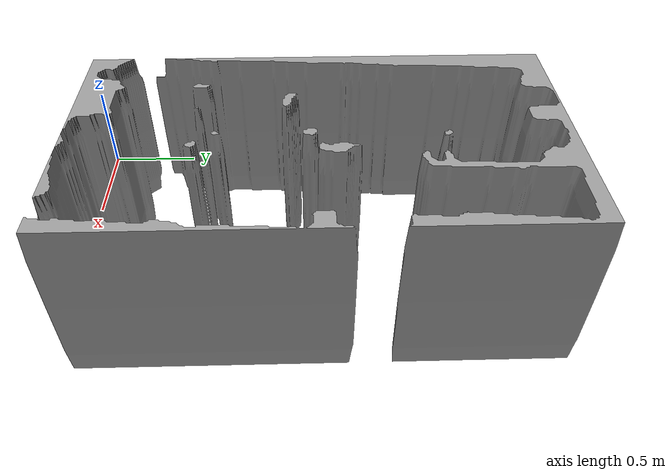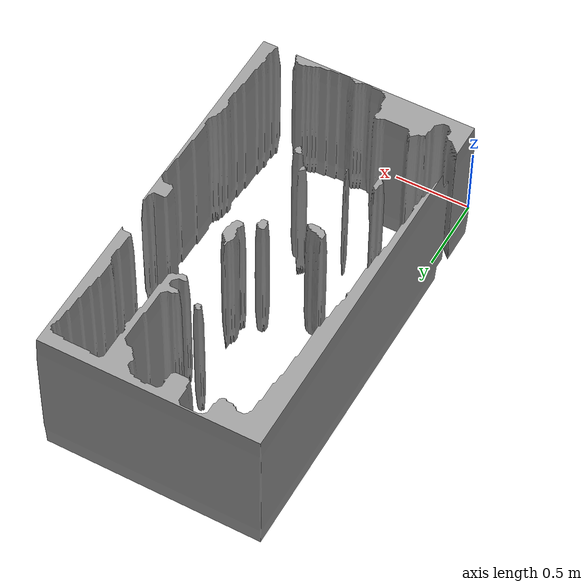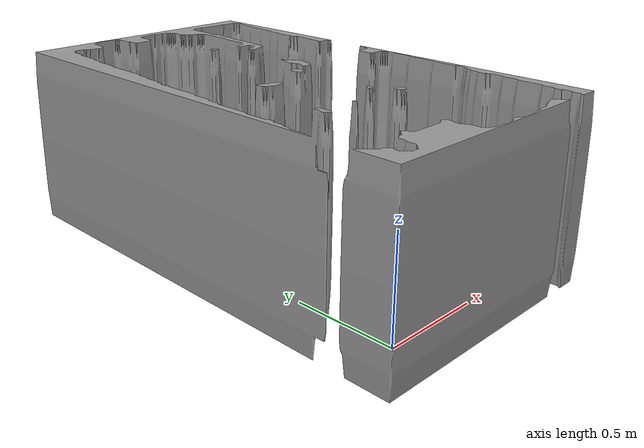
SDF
<?xml version='1.0'?>
<sdf version="1.5">
  <model name="walls">
    <pose>0 0 0 0 0 0</pose>
    <static>true</static>

    <link name="wall_link">

      <collision name="collision">
      <pose>0 0 0 0 0 0</pose>
        <geometry>
          <mesh>
            <uri>model://map_model/my_model.stl</uri>
            <scale>0.01 0.01 0.1</scale>
          </mesh>
        </geometry>
      </collision>
      <visual name="visual">
      <pose>0 0 0 0 0 0</pose>
        <geometry>
          <mesh>
            <uri>model://map_model/my_model.stl</uri>
            <scale>0.01 0.01 0.1</scale>
          </mesh>
        </geometry>
        <material>
          <script>
            <uri>file://media/materials/scripts/gazebo.material</uri>
            <name>Gazebo/Grey</name>
          </script>
        </material>
      </visual>

      <inertial>
        <mass>1.0</mass>
        <inertia> <!-- inertias are tricky to compute -->
          <!-- http://gazebosim.org/tutorials?tut=inertia&cat=build_robot -->
          <ixx>0.083</ixx>       <!-- for a box: ixx = 0.083 * mass * (y*y + z*z) -->
          <ixy>0.0</ixy>         <!-- for a box: ixy = 0 -->
          <ixz>0.0</ixz>         <!-- for a box: ixz = 0 -->
          <iyy>0.083</iyy>       <!-- for a box: iyy = 0.083 * mass * (x*x + z*z) -->
          <iyz>0.0</iyz>         <!-- for a box: iyz = 0 -->
          <izz>0.083</izz>       <!-- for a box: izz = 0.083 * mass * (x*x + y*y) -->
        </inertia>
      </inertial>
      <self_collide>1</self_collide>

    </link>
  </model>
</sdf>
